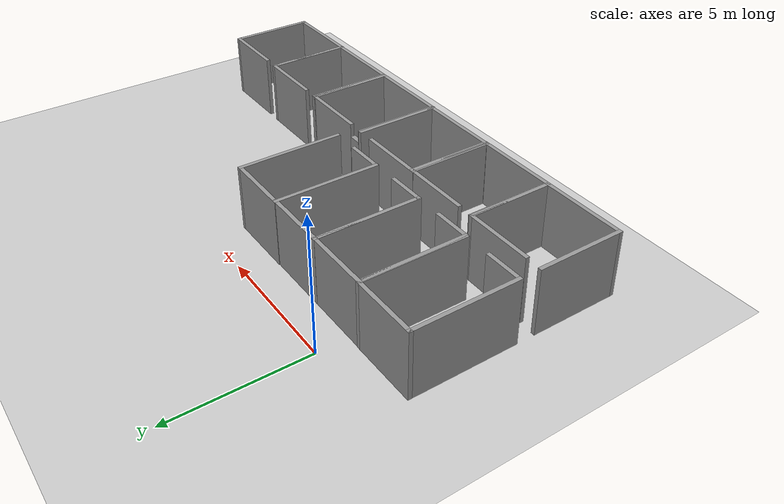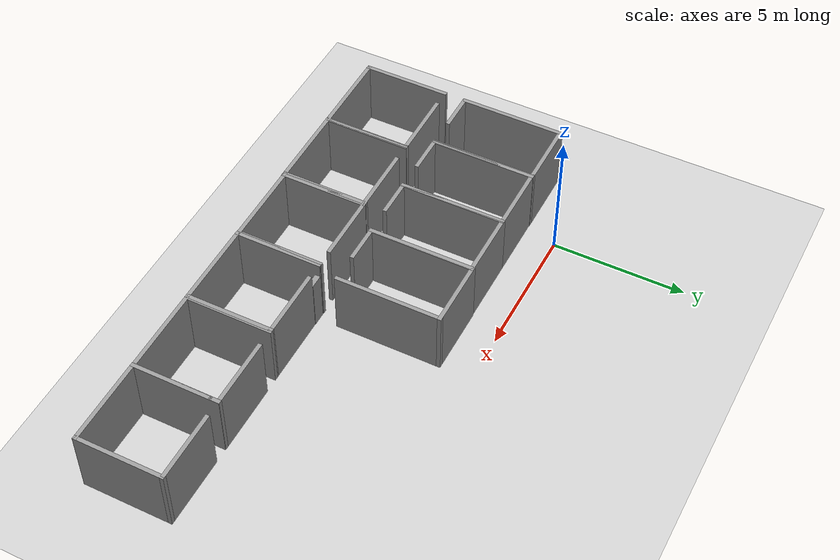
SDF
<sdf version="1.6">
 <world name="default">
  <model name="ground_plane">
   <static>1</static>
   <link name="link">
    <collision name="collision">
     <geometry><plane><normal>0 0 1</normal><size>100 100</size></plane></geometry>
     <surface>
      <contact><collide_bitmask>65535</collide_bitmask></contact>
      <friction><ode><mu>100</mu><mu2>50</mu2></ode></friction>
     </surface>
    </collision>
    <visual name="visual">
     <cast_shadows>0</cast_shadows>
     <geometry><plane><normal>0 0 1</normal><size>100 100</size></plane></geometry>
     <material>
      <script><uri>file://media/materials/scripts/gazebo.material</uri><name>Gazebo/Grey</name></script>
     </material>
    </visual>
   </link>
  </model>
  <model name="cubicle">
   <pose>-1.75869 -3.17017 0 0 -0 0</pose>
   <link name="Wall_3">
    <collision name="Wall_3_Collision">
     <geometry><box><size>4 0.15 2.5</size></box></geometry>
     <pose>0 0 1.25 0 -0 0</pose>
    </collision>
    <visual name="Wall_3_Visual">
     <pose>0 0 1.25 0 -0 0</pose>
     <geometry><box><size>4 0.15 2.5</size></box></geometry>
     <material>
      <script><uri>file://media/materials/scripts/gazebo.material</uri><name>Gazebo/Grey</name></script>
      <ambient>1 1 1 1</ambient>
     </material>
     <meta><layer>0</layer></meta>
    </visual>
    <pose>-1.225 0 0 0 -0 -1.5708</pose>
   </link>
   <link name="Wall_4">
    <collision name="Wall_4_Collision">
     <geometry><box><size>1.5 0.15 2.5</size></box></geometry>
     <pose>0 0 1.25 0 -0 0</pose>
    </collision>
    <visual name="Wall_4_Visual">
     <pose>0 0 1.25 0 -0 0</pose>
     <geometry><box><size>1.5 0.15 2.5</size></box></geometry>
     <material>
      <script><uri>file://media/materials/scripts/gazebo.material</uri><name>Gazebo/Grey</name></script>
      <ambient>1 1 1 1</ambient>
     </material>
     <meta><layer>0</layer></meta>
    </visual>
    <pose>-0.55 -1.925 0 0 -0 0</pose>
   </link>
   <link name="Wall_6">
    <collision name="Wall_6_Collision">
     <geometry><box><size>4 0.15 2.5</size></box></geometry>
     <pose>0 0 1.25 0 -0 0</pose>
    </collision>
    <visual name="Wall_6_Visual">
     <pose>0 0 1.25 0 -0 0</pose>
     <geometry><box><size>4 0.15 2.5</size></box></geometry>
     <material>
      <script><uri>file://media/materials/scripts/gazebo.material</uri><name>Gazebo/Grey</name></script>
      <ambient>1 1 1 1</ambient>
     </material>
     <meta><layer>0</layer></meta>
    </visual>
    <pose>1.225 0 0 0 -0 1.5708</pose>
   </link>
   <link name="Wall_7">
    <collision name="Wall_7_Collision">
     <geometry><box><size>2.6 0.15 2.5</size></box></geometry>
     <pose>0 0 1.25 0 -0 0</pose>
    </collision>
    <visual name="Wall_7_Visual">
     <pose>0 0 1.25 0 -0 0</pose>
     <geometry><box><size>2.6 0.15 2.5</size></box></geometry>
     <material>
      <script><uri>file://media/materials/scripts/gazebo.material</uri><name>Gazebo/Grey</name></script>
      <ambient>1 1 1 1</ambient>
     </material>
     <meta><layer>0</layer></meta>
    </visual>
    <pose>-0 1.925 0 0 -0 3.14159</pose>
   </link>
   <static>1</static>
  </model>
  <model name="cubicle_0">
   <pose>0.7221 -3.18525 0 0 -0 0</pose>
   <link name="Wall_3">
    <collision name="Wall_3_Collision">
     <geometry><box><size>4 0.15 2.5</size></box></geometry>
     <pose>0 0 1.25 0 -0 0</pose>
    </collision>
    <visual name="Wall_3_Visual">
     <pose>0 0 1.25 0 -0 0</pose>
     <geometry><box><size>4 0.15 2.5</size></box></geometry>
     <material>
      <script><uri>file://media/materials/scripts/gazebo.material</uri><name>Gazebo/Grey</name></script>
      <ambient>1 1 1 1</ambient>
     </material>
     <meta><layer>0</layer></meta>
    </visual>
    <pose>-1.225 0 0 0 -0 -1.5708</pose>
   </link>
   <link name="Wall_4">
    <collision name="Wall_4_Collision">
     <geometry><box><size>1.5 0.15 2.5</size></box></geometry>
     <pose>0 0 1.25 0 -0 0</pose>
    </collision>
    <visual name="Wall_4_Visual">
     <pose>0 0 1.25 0 -0 0</pose>
     <geometry><box><size>1.5 0.15 2.5</size></box></geometry>
     <material>
      <script><uri>file://media/materials/scripts/gazebo.material</uri><name>Gazebo/Grey</name></script>
      <ambient>1 1 1 1</ambient>
     </material>
     <meta><layer>0</layer></meta>
    </visual>
    <pose>-0.55 -1.925 0 0 -0 0</pose>
   </link>
   <link name="Wall_6">
    <collision name="Wall_6_Collision">
     <geometry><box><size>4 0.15 2.5</size></box></geometry>
     <pose>0 0 1.25 0 -0 0</pose>
    </collision>
    <visual name="Wall_6_Visual">
     <pose>0 0 1.25 0 -0 0</pose>
     <geometry><box><size>4 0.15 2.5</size></box></geometry>
     <material>
      <script><uri>file://media/materials/scripts/gazebo.material</uri><name>Gazebo/Grey</name></script>
      <ambient>1 1 1 1</ambient>
     </material>
     <meta><layer>0</layer></meta>
    </visual>
    <pose>1.225 0 0 0 -0 1.5708</pose>
   </link>
   <link name="Wall_7">
    <collision name="Wall_7_Collision">
     <geometry><box><size>2.6 0.15 2.5</size></box></geometry>
     <pose>0 0 1.25 0 -0 0</pose>
    </collision>
    <visual name="Wall_7_Visual">
     <pose>0 0 1.25 0 -0 0</pose>
     <geometry><box><size>2.6 0.15 2.5</size></box></geometry>
     <material>
      <script><uri>file://media/materials/scripts/gazebo.material</uri><name>Gazebo/Grey</name></script>
      <ambient>1 1 1 1</ambient>
     </material>
     <meta><layer>0</layer></meta>
    </visual>
    <pose>-0 1.925 0 0 -0 3.14159</pose>
   </link>
   <static>1</static>
  </model>
  <model name="cubicle_1">
   <pose>3.16716 -3.18304 0 0 -0 0</pose>
   <link name="Wall_3">
    <collision name="Wall_3_Collision">
     <geometry><box><size>4 0.15 2.5</size></box></geometry>
     <pose>0 0 1.25 0 -0 0</pose>
    </collision>
    <visual name="Wall_3_Visual">
     <pose>0 0 1.25 0 -0 0</pose>
     <geometry><box><size>4 0.15 2.5</size></box></geometry>
     <material>
      <script><uri>file://media/materials/scripts/gazebo.material</uri><name>Gazebo/Grey</name></script>
      <ambient>1 1 1 1</ambient>
     </material>
     <meta><layer>0</layer></meta>
    </visual>
    <pose>-1.225 0 0 0 -0 -1.5708</pose>
   </link>
   <link name="Wall_4">
    <collision name="Wall_4_Collision">
     <geometry><box><size>1.5 0.15 2.5</size></box></geometry>
     <pose>0 0 1.25 0 -0 0</pose>
    </collision>
    <visual name="Wall_4_Visual">
     <pose>0 0 1.25 0 -0 0</pose>
     <geometry><box><size>1.5 0.15 2.5</size></box></geometry>
     <material>
      <script><uri>file://media/materials/scripts/gazebo.material</uri><name>Gazebo/Grey</name></script>
      <ambient>1 1 1 1</ambient>
     </material>
     <meta><layer>0</layer></meta>
    </visual>
    <pose>-0.55 -1.925 0 0 -0 0</pose>
   </link>
   <link name="Wall_6">
    <collision name="Wall_6_Collision">
     <geometry><box><size>4 0.15 2.5</size></box></geometry>
     <pose>0 0 1.25 0 -0 0</pose>
    </collision>
    <visual name="Wall_6_Visual">
     <pose>0 0 1.25 0 -0 0</pose>
     <geometry><box><size>4 0.15 2.5</size></box></geometry>
     <material>
      <script><uri>file://media/materials/scripts/gazebo.material</uri><name>Gazebo/Grey</name></script>
      <ambient>1 1 1 1</ambient>
     </material>
     <meta><layer>0</layer></meta>
    </visual>
    <pose>1.225 0 0 0 -0 1.5708</pose>
   </link>
   <link name="Wall_7">
    <collision name="Wall_7_Collision">
     <geometry><box><size>2.6 0.15 2.5</size></box></geometry>
     <pose>0 0 1.25 0 -0 0</pose>
    </collision>
    <visual name="Wall_7_Visual">
     <pose>0 0 1.25 0 -0 0</pose>
     <geometry><box><size>2.6 0.15 2.5</size></box></geometry>
     <material>
      <script><uri>file://media/materials/scripts/gazebo.material</uri><name>Gazebo/Grey</name></script>
      <ambient>1 1 1 1</ambient>
     </material>
     <meta><layer>0</layer></meta>
    </visual>
    <pose>-0 1.925 0 0 -0 3.14159</pose>
   </link>
   <static>1</static>
  </model>
  <model name="cubicle_2">
   <pose>5.59423 -3.16333 0 0 -0 0</pose>
   <link name="Wall_3">
    <collision name="Wall_3_Collision">
     <geometry><box><size>4 0.15 2.5</size></box></geometry>
     <pose>0 0 1.25 0 -0 0</pose>
    </collision>
    <visual name="Wall_3_Visual">
     <pose>0 0 1.25 0 -0 0</pose>
     <geometry><box><size>4 0.15 2.5</size></box></geometry>
     <material>
      <script><uri>file://media/materials/scripts/gazebo.material</uri><name>Gazebo/Grey</name></script>
      <ambient>1 1 1 1</ambient>
     </material>
     <meta><layer>0</layer></meta>
    </visual>
    <pose>-1.225 0 0 0 -0 -1.5708</pose>
   </link>
   <link name="Wall_4">
    <collision name="Wall_4_Collision">
     <geometry><box><size>1.5 0.15 2.5</size></box></geometry>
     <pose>0 0 1.25 0 -0 0</pose>
    </collision>
    <visual name="Wall_4_Visual">
     <pose>0 0 1.25 0 -0 0</pose>
     <geometry><box><size>1.5 0.15 2.5</size></box></geometry>
     <material>
      <script><uri>file://media/materials/scripts/gazebo.material</uri><name>Gazebo/Grey</name></script>
      <ambient>1 1 1 1</ambient>
     </material>
     <meta><layer>0</layer></meta>
    </visual>
    <pose>-0.55 -1.925 0 0 -0 0</pose>
   </link>
   <link name="Wall_6">
    <collision name="Wall_6_Collision">
     <geometry><box><size>4 0.15 2.5</size></box></geometry>
     <pose>0 0 1.25 0 -0 0</pose>
    </collision>
    <visual name="Wall_6_Visual">
     <pose>0 0 1.25 0 -0 0</pose>
     <geometry><box><size>4 0.15 2.5</size></box></geometry>
     <material>
      <script><uri>file://media/materials/scripts/gazebo.material</uri><name>Gazebo/Grey</name></script>
      <ambient>1 1 1 1</ambient>
     </material>
     <meta><layer>0</layer></meta>
    </visual>
    <pose>1.225 0 0 0 -0 1.5708</pose>
   </link>
   <link name="Wall_7">
    <collision name="Wall_7_Collision">
     <geometry><box><size>2.6 0.15 2.5</size></box></geometry>
     <pose>0 0 1.25 0 -0 0</pose>
    </collision>
    <visual name="Wall_7_Visual">
     <pose>0 0 1.25 0 -0 0</pose>
     <geometry><box><size>2.6 0.15 2.5</size></box></geometry>
     <material>
      <script><uri>file://media/materials/scripts/gazebo.material</uri><name>Gazebo/Grey</name></script>
      <ambient>1 1 1 1</ambient>
     </material>
     <meta><layer>0</layer></meta>
    </visual>
    <pose>-0 1.925 0 0 -0 3.14159</pose>
   </link>
   <static>1</static>
  </model>
  <model name="102Office_3">
   <pose>8.17012 -7.51834 0 0 -0 0</pose>
   <link name="Door_0">
    <collision name="Door_0_Collision">
     <geometry><box><size>0.517842 0.2 2</size></box></geometry>
     <pose>0 0 1 0 -0 0</pose>
    </collision>
    <visual name="Door_0_Visual">
     <pose>0 0 1 0 -0 0</pose>
     <geometry><box><size>0.517842 0.2 2</size></box></geometry>
     <material>
      <script><uri>file://media/materials/scripts/gazebo.material</uri><name>Gazebo/Grey</name></script>
     </material>
    </visual>
    <pose>-1.26918 1.57689 0 0 -0 0</pose>
   </link>
   <link name="Wall_13">
    <collision name="Wall_13_Collision">
     <geometry><box><size>3.334 0.15 2.5</size></box></geometry>
     <pose>0 0 1.25 0 -0 0</pose>
    </collision>
    <visual name="Wall_13_Visual">
     <pose>0 0 1.25 0 -0 0</pose>
     <geometry><box><size>3.334 0.15 2.5</size></box></geometry>
     <material>
      <script><uri>file://media/materials/scripts/gazebo.material</uri><name>Gazebo/Grey</name></script>
      <ambient>1 1 1 1</ambient>
     </material>
     <meta><layer>0</layer></meta>
    </visual>
    <pose>-0 -1.592 0 0 -0 0</pose>
   </link>
   <link name="Wall_15">
    <collision name="Wall_15_Collision">
     <geometry><box><size>3.334 0.15 2.5</size></box></geometry>
     <pose>0 0 1.25 0 -0 0</pose>
    </collision>
    <visual name="Wall_15_Visual">
     <pose>0 0 1.25 0 -0 0</pose>
     <geometry><box><size>3.334 0.15 2.5</size></box></geometry>
     <material>
      <script><uri>file://media/materials/scripts/gazebo.material</uri><name>Gazebo/Grey</name></script>
      <ambient>1 1 1 1</ambient>
     </material>
     <meta><layer>0</layer></meta>
    </visual>
    <pose>-1.592 0 0 0 -0 1.5708</pose>
   </link>
   <link name="Wall_17">
    <collision name="Wall_17_Collision">
     <geometry><box><size>3.334 0.15 2.5</size></box></geometry>
     <pose>0 0 1.25 0 -0 0</pose>
    </collision>
    <visual name="Wall_17_Visual">
     <pose>0 0 1.25 0 -0 0</pose>
     <geometry><box><size>3.334 0.15 2.5</size></box></geometry>
     <material>
      <script><uri>file://media/materials/scripts/gazebo.material</uri><name>Gazebo/Grey</name></script>
      <ambient>1 1 1 1</ambient>
     </material>
     <meta><layer>0</layer></meta>
    </visual>
    <pose>1.592 0 0 0 -0 1.5708</pose>
   </link>
   <link name="Wall_19">
    <collision name="Wall_19_Collision">
     <geometry><box><size>2.667 0.15 2.5</size></box></geometry>
     <pose>0 0 1.25 0 -0 0</pose>
    </collision>
    <visual name="Wall_19_Visual">
     <pose>0 0 1.25 0 -0 0</pose>
     <geometry><box><size>2.667 0.15 2.5</size></box></geometry>
     <material>
      <script><uri>file://media/materials/scripts/gazebo.material</uri><name>Gazebo/Grey</name></script>
      <ambient>1 1 1 1</ambient>
     </material>
     <meta><layer>0</layer></meta>
    </visual>
    <pose>0.3335 1.592 0 0 -0 3.14159</pose>
   </link>
   <static>1</static>
  </model>
  <model name="102Office_0">
   <link name="Wall_13">
    <pose>0 -1.592 0 0 -0 0</pose>
    <visual name="Wall_13_Visual">
     <pose>0 0 1.25 0 -0 0</pose>
     <geometry><box><size>3.334 0.15 2.5</size></box></geometry>
     <material>
      <script><uri>file://media/materials/scripts/gazebo.material</uri><name>Gazebo/Grey</name></script>
      <ambient>1 1 1 1</ambient>
      <shader type="pixel"/>
     </material>
     <meta><layer>0</layer></meta>
    </visual>
    <collision name="Wall_13_Collision">
     <pose>0 0 1.25 0 -0 0</pose>
     <geometry><box><size>3.334 0.15 2.5</size></box></geometry>
     <surface>
      <friction>
       <ode><mu>1</mu><mu2>1</mu2><fdir1>0 0 0</fdir1><slip1>0</slip1><slip2>0</slip2></ode>
       <torsional>
        <coefficient>1</coefficient>
        <patch_radius>0</patch_radius>
        <surface_radius>0</surface_radius>
        <use_patch_radius>1</use_patch_radius>
        <ode><slip>0</slip></ode>
       </torsional>
      </friction>
      <bounce><restitution_coefficient>0</restitution_coefficient><threshold>1e+06</threshold></bounce>
      <contact>
       <collide_without_contact>0</collide_without_contact>
       <collide_without_contact_bitmask>1</collide_without_contact_bitmask>
       <collide_bitmask>1</collide_bitmask>
       <ode>
        <soft_cfm>0</soft_cfm>
        <soft_erp>0.2</soft_erp>
        <kp>1e+13</kp>
        <kd>1</kd>
        <max_vel>0.01</max_vel>
        <min_depth>0</min_depth>
       </ode>
       <bullet>
        <split_impulse>1</split_impulse>
        <split_impulse_penetration_threshold>-0.01</split_impulse_penetration_threshold>
        <soft_cfm>0</soft_cfm>
        <soft_erp>0.2</soft_erp>
        <kp>1e+13</kp>
        <kd>1</kd>
       </bullet>
      </contact>
     </surface>
    </collision>
   </link>
   <link name="Wall_15">
    <pose>-1.592 0 0 0 -0 1.5708</pose>
    <visual name="Wall_15_Visual">
     <pose>0 0 1.25 0 -0 0</pose>
     <geometry><box><size>3.334 0.15 2.5</size></box></geometry>
     <material>
      <script><uri>file://media/materials/scripts/gazebo.material</uri><name>Gazebo/Grey</name></script>
      <ambient>1 1 1 1</ambient>
      <shader type="pixel"/>
     </material>
     <meta><layer>0</layer></meta>
    </visual>
    <collision name="Wall_15_Collision">
     <pose>0 0 1.25 0 -0 0</pose>
     <geometry><box><size>3.334 0.15 2.5</size></box></geometry>
     <surface>
      <friction>
       <ode><mu>1</mu><mu2>1</mu2><fdir1>0 0 0</fdir1><slip1>0</slip1><slip2>0</slip2></ode>
       <torsional>
        <coefficient>1</coefficient>
        <patch_radius>0</patch_radius>
        <surface_radius>0</surface_radius>
        <use_patch_radius>1</use_patch_radius>
        <ode><slip>0</slip></ode>
       </torsional>
      </friction>
      <bounce><restitution_coefficient>0</restitution_coefficient><threshold>1e+06</threshold></bounce>
      <contact>
       <collide_without_contact>0</collide_without_contact>
       <collide_without_contact_bitmask>1</collide_without_contact_bitmask>
       <collide_bitmask>1</collide_bitmask>
       <ode>
        <soft_cfm>0</soft_cfm>
        <soft_erp>0.2</soft_erp>
        <kp>1e+13</kp>
        <kd>1</kd>
        <max_vel>0.01</max_vel>
        <min_depth>0</min_depth>
       </ode>
       <bullet>
        <split_impulse>1</split_impulse>
        <split_impulse_penetration_threshold>-0.01</split_impulse_penetration_threshold>
        <soft_cfm>0</soft_cfm>
        <soft_erp>0.2</soft_erp>
        <kp>1e+13</kp>
        <kd>1</kd>
       </bullet>
      </contact>
     </surface>
    </collision>
   </link>
   <link name="Wall_17">
    <pose>1.592 0 0 0 -0 1.5708</pose>
    <visual name="Wall_17_Visual">
     <pose>0 0 1.25 0 -0 0</pose>
     <geometry><box><size>3.334 0.15 2.5</size></box></geometry>
     <material>
      <script><uri>file://media/materials/scripts/gazebo.material</uri><name>Gazebo/Grey</name></script>
      <ambient>1 1 1 1</ambient>
      <shader type="pixel"/>
     </material>
     <meta><layer>0</layer></meta>
    </visual>
    <collision name="Wall_17_Collision">
     <pose>0 0 1.25 0 -0 0</pose>
     <geometry><box><size>3.334 0.15 2.5</size></box></geometry>
     <surface>
      <friction>
       <ode><mu>1</mu><mu2>1</mu2><fdir1>0 0 0</fdir1><slip1>0</slip1><slip2>0</slip2></ode>
       <torsional>
        <coefficient>1</coefficient>
        <patch_radius>0</patch_radius>
        <surface_radius>0</surface_radius>
        <use_patch_radius>1</use_patch_radius>
        <ode><slip>0</slip></ode>
       </torsional>
      </friction>
      <bounce><restitution_coefficient>0</restitution_coefficient><threshold>1e+06</threshold></bounce>
      <contact>
       <collide_without_contact>0</collide_without_contact>
       <collide_without_contact_bitmask>1</collide_without_contact_bitmask>
       <collide_bitmask>1</collide_bitmask>
       <ode>
        <soft_cfm>0</soft_cfm>
        <soft_erp>0.2</soft_erp>
        <kp>1e+13</kp>
        <kd>1</kd>
        <max_vel>0.01</max_vel>
        <min_depth>0</min_depth>
       </ode>
       <bullet>
        <split_impulse>1</split_impulse>
        <split_impulse_penetration_threshold>-0.01</split_impulse_penetration_threshold>
        <soft_cfm>0</soft_cfm>
        <soft_erp>0.2</soft_erp>
        <kp>1e+13</kp>
        <kd>1</kd>
       </bullet>
      </contact>
     </surface>
    </collision>
   </link>
   <link name="Wall_19">
    <pose>0.3335 1.592 0 0 -0 3.14159</pose>
    <visual name="Wall_19_Visual">
     <pose>0 0 1.25 0 -0 0</pose>
     <geometry><box><size>2.667 0.15 2.5</size></box></geometry>
     <material>
      <script><uri>file://media/materials/scripts/gazebo.material</uri><name>Gazebo/Grey</name></script>
      <ambient>1 1 1 1</ambient>
      <shader type="pixel"/>
     </material>
     <meta><layer>0</layer></meta>
    </visual>
    <collision name="Wall_19_Collision">
     <pose>0 0 1.25 0 -0 0</pose>
     <geometry><box><size>2.667 0.15 2.5</size></box></geometry>
     <surface>
      <friction>
       <ode><mu>1</mu><mu2>1</mu2><fdir1>0 0 0</fdir1><slip1>0</slip1><slip2>0</slip2></ode>
       <torsional>
        <coefficient>1</coefficient>
        <patch_radius>0</patch_radius>
        <surface_radius>0</surface_radius>
        <use_patch_radius>1</use_patch_radius>
        <ode><slip>0</slip></ode>
       </torsional>
      </friction>
      <bounce><restitution_coefficient>0</restitution_coefficient><threshold>1e+06</threshold></bounce>
      <contact>
       <collide_without_contact>0</collide_without_contact>
       <collide_without_contact_bitmask>1</collide_without_contact_bitmask>
       <collide_bitmask>1</collide_bitmask>
       <ode>
        <soft_cfm>0</soft_cfm>
        <soft_erp>0.2</soft_erp>
        <kp>1e+13</kp>
        <kd>1</kd>
        <max_vel>0.01</max_vel>
        <min_depth>0</min_depth>
       </ode>
       <bullet>
        <split_impulse>1</split_impulse>
        <split_impulse_penetration_threshold>-0.01</split_impulse_penetration_threshold>
        <soft_cfm>0</soft_cfm>
        <soft_erp>0.2</soft_erp>
        <kp>1e+13</kp>
        <kd>1</kd>
       </bullet>
      </contact>
     </surface>
    </collision>
   </link>
   <static>1</static>
   <pose>-1.39414 -7.51028 0 0 -0 0</pose>
  </model>
  <model name="102Office_1">
   <link name="Wall_13">
    <pose>0 -1.592 0 0 -0 0</pose>
    <visual name="Wall_13_Visual">
     <pose>0 0 1.25 0 -0 0</pose>
     <geometry><box><size>3.334 0.15 2.5</size></box></geometry>
     <material>
      <script><uri>file://media/materials/scripts/gazebo.material</uri><name>Gazebo/Grey</name></script>
      <ambient>1 1 1 1</ambient>
      <shader type="pixel"/>
     </material>
     <meta><layer>0</layer></meta>
    </visual>
    <collision name="Wall_13_Collision">
     <pose>0 0 1.25 0 -0 0</pose>
     <geometry><box><size>3.334 0.15 2.5</size></box></geometry>
     <surface>
      <friction>
       <ode><mu>1</mu><mu2>1</mu2><fdir1>0 0 0</fdir1><slip1>0</slip1><slip2>0</slip2></ode>
       <torsional>
        <coefficient>1</coefficient>
        <patch_radius>0</patch_radius>
        <surface_radius>0</surface_radius>
        <use_patch_radius>1</use_patch_radius>
        <ode><slip>0</slip></ode>
       </torsional>
      </friction>
      <bounce><restitution_coefficient>0</restitution_coefficient><threshold>1e+06</threshold></bounce>
      <contact>
       <collide_without_contact>0</collide_without_contact>
       <collide_without_contact_bitmask>1</collide_without_contact_bitmask>
       <collide_bitmask>1</collide_bitmask>
       <ode>
        <soft_cfm>0</soft_cfm>
        <soft_erp>0.2</soft_erp>
        <kp>1e+13</kp>
        <kd>1</kd>
        <max_vel>0.01</max_vel>
        <min_depth>0</min_depth>
       </ode>
       <bullet>
        <split_impulse>1</split_impulse>
        <split_impulse_penetration_threshold>-0.01</split_impulse_penetration_threshold>
        <soft_cfm>0</soft_cfm>
        <soft_erp>0.2</soft_erp>
        <kp>1e+13</kp>
        <kd>1</kd>
       </bullet>
      </contact>
     </surface>
    </collision>
   </link>
   <link name="Wall_15">
    <pose>-1.592 0 0 0 -0 1.5708</pose>
    <visual name="Wall_15_Visual">
     <pose>0 0 1.25 0 -0 0</pose>
     <geometry><box><size>3.334 0.15 2.5</size></box></geometry>
     <material>
      <script><uri>file://media/materials/scripts/gazebo.material</uri><name>Gazebo/Grey</name></script>
      <ambient>1 1 1 1</ambient>
      <shader type="pixel"/>
     </material>
     <meta><layer>0</layer></meta>
    </visual>
    <collision name="Wall_15_Collision">
     <pose>0 0 1.25 0 -0 0</pose>
     <geometry><box><size>3.334 0.15 2.5</size></box></geometry>
     <surface>
      <friction>
       <ode><mu>1</mu><mu2>1</mu2><fdir1>0 0 0</fdir1><slip1>0</slip1><slip2>0</slip2></ode>
       <torsional>
        <coefficient>1</coefficient>
        <patch_radius>0</patch_radius>
        <surface_radius>0</surface_radius>
        <use_patch_radius>1</use_patch_radius>
        <ode><slip>0</slip></ode>
       </torsional>
      </friction>
      <bounce><restitution_coefficient>0</restitution_coefficient><threshold>1e+06</threshold></bounce>
      <contact>
       <collide_without_contact>0</collide_without_contact>
       <collide_without_contact_bitmask>1</collide_without_contact_bitmask>
       <collide_bitmask>1</collide_bitmask>
       <ode>
        <soft_cfm>0</soft_cfm>
        <soft_erp>0.2</soft_erp>
        <kp>1e+13</kp>
        <kd>1</kd>
        <max_vel>0.01</max_vel>
        <min_depth>0</min_depth>
       </ode>
       <bullet>
        <split_impulse>1</split_impulse>
        <split_impulse_penetration_threshold>-0.01</split_impulse_penetration_threshold>
        <soft_cfm>0</soft_cfm>
        <soft_erp>0.2</soft_erp>
        <kp>1e+13</kp>
        <kd>1</kd>
       </bullet>
      </contact>
     </surface>
    </collision>
   </link>
   <link name="Wall_17">
    <pose>1.592 0 0 0 -0 1.5708</pose>
    <visual name="Wall_17_Visual">
     <pose>0 0 1.25 0 -0 0</pose>
     <geometry><box><size>3.334 0.15 2.5</size></box></geometry>
     <material>
      <script><uri>file://media/materials/scripts/gazebo.material</uri><name>Gazebo/Grey</name></script>
      <ambient>1 1 1 1</ambient>
      <shader type="pixel"/>
     </material>
     <meta><layer>0</layer></meta>
    </visual>
    <collision name="Wall_17_Collision">
     <pose>0 0 1.25 0 -0 0</pose>
     <geometry><box><size>3.334 0.15 2.5</size></box></geometry>
     <surface>
      <friction>
       <ode><mu>1</mu><mu2>1</mu2><fdir1>0 0 0</fdir1><slip1>0</slip1><slip2>0</slip2></ode>
       <torsional>
        <coefficient>1</coefficient>
        <patch_radius>0</patch_radius>
        <surface_radius>0</surface_radius>
        <use_patch_radius>1</use_patch_radius>
        <ode><slip>0</slip></ode>
       </torsional>
      </friction>
      <bounce><restitution_coefficient>0</restitution_coefficient><threshold>1e+06</threshold></bounce>
      <contact>
       <collide_without_contact>0</collide_without_contact>
       <collide_without_contact_bitmask>1</collide_without_contact_bitmask>
       <collide_bitmask>1</collide_bitmask>
       <ode>
        <soft_cfm>0</soft_cfm>
        <soft_erp>0.2</soft_erp>
        <kp>1e+13</kp>
        <kd>1</kd>
        <max_vel>0.01</max_vel>
        <min_depth>0</min_depth>
       </ode>
       <bullet>
        <split_impulse>1</split_impulse>
        <split_impulse_penetration_threshold>-0.01</split_impulse_penetration_threshold>
        <soft_cfm>0</soft_cfm>
        <soft_erp>0.2</soft_erp>
        <kp>1e+13</kp>
        <kd>1</kd>
       </bullet>
      </contact>
     </surface>
    </collision>
   </link>
   <link name="Wall_19">
    <pose>0.3335 1.592 0 0 -0 3.14159</pose>
    <visual name="Wall_19_Visual">
     <pose>0 0 1.25 0 -0 0</pose>
     <geometry><box><size>2.667 0.15 2.5</size></box></geometry>
     <material>
      <script><uri>file://media/materials/scripts/gazebo.material</uri><name>Gazebo/Grey</name></script>
      <ambient>1 1 1 1</ambient>
      <shader type="pixel"/>
     </material>
     <meta><layer>0</layer></meta>
    </visual>
    <collision name="Wall_19_Collision">
     <pose>0 0 1.25 0 -0 0</pose>
     <geometry><box><size>2.667 0.15 2.5</size></box></geometry>
     <surface>
      <friction>
       <ode><mu>1</mu><mu2>1</mu2><fdir1>0 0 0</fdir1><slip1>0</slip1><slip2>0</slip2></ode>
       <torsional>
        <coefficient>1</coefficient>
        <patch_radius>0</patch_radius>
        <surface_radius>0</surface_radius>
        <use_patch_radius>1</use_patch_radius>
        <ode><slip>0</slip></ode>
       </torsional>
      </friction>
      <bounce><restitution_coefficient>0</restitution_coefficient><threshold>1e+06</threshold></bounce>
      <contact>
       <collide_without_contact>0</collide_without_contact>
       <collide_without_contact_bitmask>1</collide_without_contact_bitmask>
       <collide_bitmask>1</collide_bitmask>
       <ode>
        <soft_cfm>0</soft_cfm>
        <soft_erp>0.2</soft_erp>
        <kp>1e+13</kp>
        <kd>1</kd>
        <max_vel>0.01</max_vel>
        <min_depth>0</min_depth>
       </ode>
       <bullet>
        <split_impulse>1</split_impulse>
        <split_impulse_penetration_threshold>-0.01</split_impulse_penetration_threshold>
        <soft_cfm>0</soft_cfm>
        <soft_erp>0.2</soft_erp>
        <kp>1e+13</kp>
        <kd>1</kd>
       </bullet>
      </contact>
     </surface>
    </collision>
   </link>
   <static>1</static>
   <pose>1.82128 -7.51458 0 0 -0 0</pose>
  </model>
  <model name="102OfficeRev_0">
   <link name="Wall_21">
    <pose>-3e-06 -1.5921 0 0 -0 0</pose>
    <visual name="Wall_21_Visual">
     <pose>0 0 1.25 0 -0 0</pose>
     <geometry><box><size>3.334 0.15 2.5</size></box></geometry>
     <material>
      <script><uri>file://media/materials/scripts/gazebo.material</uri><name>Gazebo/Grey</name></script>
      <ambient>1 1 1 1</ambient>
      <shader type="pixel"/>
     </material>
     <meta><layer>0</layer></meta>
    </visual>
    <collision name="Wall_21_Collision">
     <pose>0 0 1.25 0 -0 0</pose>
     <geometry><box><size>3.334 0.15 2.5</size></box></geometry>
     <surface>
      <friction>
       <ode><mu>1</mu><mu2>1</mu2><fdir1>0 0 0</fdir1><slip1>0</slip1><slip2>0</slip2></ode>
       <torsional>
        <coefficient>1</coefficient>
        <patch_radius>0</patch_radius>
        <surface_radius>0</surface_radius>
        <use_patch_radius>1</use_patch_radius>
        <ode><slip>0</slip></ode>
       </torsional>
      </friction>
      <bounce><restitution_coefficient>0</restitution_coefficient><threshold>1e+06</threshold></bounce>
      <contact>
       <collide_without_contact>0</collide_without_contact>
       <collide_without_contact_bitmask>1</collide_without_contact_bitmask>
       <collide_bitmask>1</collide_bitmask>
       <ode>
        <soft_cfm>0</soft_cfm>
        <soft_erp>0.2</soft_erp>
        <kp>1e+13</kp>
        <kd>1</kd>
        <max_vel>0.01</max_vel>
        <min_depth>0</min_depth>
       </ode>
       <bullet>
        <split_impulse>1</split_impulse>
        <split_impulse_penetration_threshold>-0.01</split_impulse_penetration_threshold>
        <soft_cfm>0</soft_cfm>
        <soft_erp>0.2</soft_erp>
        <kp>1e+13</kp>
        <kd>1</kd>
       </bullet>
      </contact>
     </surface>
    </collision>
   </link>
   <link name="Wall_23">
    <pose>1.59186 9.4e-05 0 0 -0 1.57088</pose>
    <visual name="Wall_23_Visual">
     <pose>0 0 1.25 0 -0 0</pose>
     <geometry><box><size>3.334 0.15 2.5</size></box></geometry>
     <material>
      <script><uri>file://media/materials/scripts/gazebo.material</uri><name>Gazebo/Grey</name></script>
      <ambient>1 1 1 1</ambient>
      <shader type="pixel"/>
     </material>
     <meta><layer>0</layer></meta>
    </visual>
    <collision name="Wall_23_Collision">
     <pose>0 0 1.25 0 -0 0</pose>
     <geometry><box><size>3.334 0.15 2.5</size></box></geometry>
     <surface>
      <friction>
       <ode><mu>1</mu><mu2>1</mu2><fdir1>0 0 0</fdir1><slip1>0</slip1><slip2>0</slip2></ode>
       <torsional>
        <coefficient>1</coefficient>
        <patch_radius>0</patch_radius>
        <surface_radius>0</surface_radius>
        <use_patch_radius>1</use_patch_radius>
        <ode><slip>0</slip></ode>
       </torsional>
      </friction>
      <bounce><restitution_coefficient>0</restitution_coefficient><threshold>1e+06</threshold></bounce>
      <contact>
       <collide_without_contact>0</collide_without_contact>
       <collide_without_contact_bitmask>1</collide_without_contact_bitmask>
       <collide_bitmask>1</collide_bitmask>
       <ode>
        <soft_cfm>0</soft_cfm>
        <soft_erp>0.2</soft_erp>
        <kp>1e+13</kp>
        <kd>1</kd>
        <max_vel>0.01</max_vel>
        <min_depth>0</min_depth>
       </ode>
       <bullet>
        <split_impulse>1</split_impulse>
        <split_impulse_penetration_threshold>-0.01</split_impulse_penetration_threshold>
        <soft_cfm>0</soft_cfm>
        <soft_erp>0.2</soft_erp>
        <kp>1e+13</kp>
        <kd>1</kd>
       </bullet>
      </contact>
     </surface>
    </collision>
   </link>
   <link name="Wall_25">
    <pose>-1.592 -0.000101 0 0 -0 1.5708</pose>
    <visual name="Wall_25_Visual">
     <pose>0 0 1.25 0 -0 0</pose>
     <geometry><box><size>3.334 0.15 2.5</size></box></geometry>
     <material>
      <script><uri>file://media/materials/scripts/gazebo.material</uri><name>Gazebo/Grey</name></script>
      <ambient>1 1 1 1</ambient>
      <shader type="pixel"/>
     </material>
     <meta><layer>0</layer></meta>
    </visual>
    <collision name="Wall_25_Collision">
     <pose>0 0 1.25 0 -0 0</pose>
     <geometry><box><size>3.334 0.15 2.5</size></box></geometry>
     <surface>
      <friction>
       <ode><mu>1</mu><mu2>1</mu2><fdir1>0 0 0</fdir1><slip1>0</slip1><slip2>0</slip2></ode>
       <torsional>
        <coefficient>1</coefficient>
        <patch_radius>0</patch_radius>
        <surface_radius>0</surface_radius>
        <use_patch_radius>1</use_patch_radius>
        <ode><slip>0</slip></ode>
       </torsional>
      </friction>
      <bounce><restitution_coefficient>0</restitution_coefficient><threshold>1e+06</threshold></bounce>
      <contact>
       <collide_without_contact>0</collide_without_contact>
       <collide_without_contact_bitmask>1</collide_without_contact_bitmask>
       <collide_bitmask>1</collide_bitmask>
       <ode>
        <soft_cfm>0</soft_cfm>
        <soft_erp>0.2</soft_erp>
        <kp>1e+13</kp>
        <kd>1</kd>
        <max_vel>0.01</max_vel>
        <min_depth>0</min_depth>
       </ode>
       <bullet>
        <split_impulse>1</split_impulse>
        <split_impulse_penetration_threshold>-0.01</split_impulse_penetration_threshold>
        <soft_cfm>0</soft_cfm>
        <soft_erp>0.2</soft_erp>
        <kp>1e+13</kp>
        <kd>1</kd>
       </bullet>
      </contact>
     </surface>
    </collision>
   </link>
   <link name="Wall_27">
    <pose>-0.333503 1.5919 0 0 -0 0</pose>
    <visual name="Wall_27_Visual">
     <pose>0 0 1.25 0 -0 0</pose>
     <geometry><box><size>2.667 0.15 2.5</size></box></geometry>
     <material>
      <script><uri>file://media/materials/scripts/gazebo.material</uri><name>Gazebo/Grey</name></script>
      <ambient>1 1 1 1</ambient>
      <shader type="pixel"/>
     </material>
     <meta><layer>0</layer></meta>
    </visual>
    <collision name="Wall_27_Collision">
     <pose>0 0 1.25 0 -0 0</pose>
     <geometry><box><size>2.667 0.15 2.5</size></box></geometry>
     <surface>
      <friction>
       <ode><mu>1</mu><mu2>1</mu2><fdir1>0 0 0</fdir1><slip1>0</slip1><slip2>0</slip2></ode>
       <torsional>
        <coefficient>1</coefficient>
        <patch_radius>0</patch_radius>
        <surface_radius>0</surface_radius>
        <use_patch_radius>1</use_patch_radius>
        <ode><slip>0</slip></ode>
       </torsional>
      </friction>
      <bounce><restitution_coefficient>0</restitution_coefficient><threshold>1e+06</threshold></bounce>
      <contact>
       <collide_without_contact>0</collide_without_contact>
       <collide_without_contact_bitmask>1</collide_without_contact_bitmask>
       <collide_bitmask>1</collide_bitmask>
       <ode>
        <soft_cfm>0</soft_cfm>
        <soft_erp>0.2</soft_erp>
        <kp>1e+13</kp>
        <kd>1</kd>
        <max_vel>0.01</max_vel>
        <min_depth>0</min_depth>
       </ode>
       <bullet>
        <split_impulse>1</split_impulse>
        <split_impulse_penetration_threshold>-0.01</split_impulse_penetration_threshold>
        <soft_cfm>0</soft_cfm>
        <soft_erp>0.2</soft_erp>
        <kp>1e+13</kp>
        <kd>1</kd>
       </bullet>
      </contact>
     </surface>
    </collision>
   </link>
   <static>1</static>
   <pose>4.93248 -7.50045 0 0 -0 0</pose>
  </model>
  <model name="102Office_4">
   <link name="Wall_13">
    <pose>0 -1.592 0 0 -0 0</pose>
    <visual name="Wall_13_Visual">
     <pose>0 0 1.25 0 -0 0</pose>
     <geometry><box><size>3.334 0.15 2.5</size></box></geometry>
     <material>
      <script><uri>file://media/materials/scripts/gazebo.material</uri><name>Gazebo/Grey</name></script>
      <ambient>1 1 1 1</ambient>
      <shader type="pixel"/>
     </material>
     <meta><layer>0</layer></meta>
    </visual>
    <collision name="Wall_13_Collision">
     <pose>0 0 1.25 0 -0 0</pose>
     <geometry><box><size>3.334 0.15 2.5</size></box></geometry>
     <surface>
      <friction>
       <ode><mu>1</mu><mu2>1</mu2><fdir1>0 0 0</fdir1><slip1>0</slip1><slip2>0</slip2></ode>
       <torsional>
        <coefficient>1</coefficient>
        <patch_radius>0</patch_radius>
        <surface_radius>0</surface_radius>
        <use_patch_radius>1</use_patch_radius>
        <ode><slip>0</slip></ode>
       </torsional>
      </friction>
      <bounce><restitution_coefficient>0</restitution_coefficient><threshold>1e+06</threshold></bounce>
      <contact>
       <collide_without_contact>0</collide_without_contact>
       <collide_without_contact_bitmask>1</collide_without_contact_bitmask>
       <collide_bitmask>1</collide_bitmask>
       <ode>
        <soft_cfm>0</soft_cfm>
        <soft_erp>0.2</soft_erp>
        <kp>1e+13</kp>
        <kd>1</kd>
        <max_vel>0.01</max_vel>
        <min_depth>0</min_depth>
       </ode>
       <bullet>
        <split_impulse>1</split_impulse>
        <split_impulse_penetration_threshold>-0.01</split_impulse_penetration_threshold>
        <soft_cfm>0</soft_cfm>
        <soft_erp>0.2</soft_erp>
        <kp>1e+13</kp>
        <kd>1</kd>
       </bullet>
      </contact>
     </surface>
    </collision>
   </link>
   <link name="Wall_15">
    <pose>-1.592 0 0 0 -0 1.5708</pose>
    <visual name="Wall_15_Visual">
     <pose>0 0 1.25 0 -0 0</pose>
     <geometry><box><size>3.334 0.15 2.5</size></box></geometry>
     <material>
      <script><uri>file://media/materials/scripts/gazebo.material</uri><name>Gazebo/Grey</name></script>
      <ambient>1 1 1 1</ambient>
      <shader type="pixel"/>
     </material>
     <meta><layer>0</layer></meta>
    </visual>
    <collision name="Wall_15_Collision">
     <pose>0 0 1.25 0 -0 0</pose>
     <geometry><box><size>3.334 0.15 2.5</size></box></geometry>
     <surface>
      <friction>
       <ode><mu>1</mu><mu2>1</mu2><fdir1>0 0 0</fdir1><slip1>0</slip1><slip2>0</slip2></ode>
       <torsional>
        <coefficient>1</coefficient>
        <patch_radius>0</patch_radius>
        <surface_radius>0</surface_radius>
        <use_patch_radius>1</use_patch_radius>
        <ode><slip>0</slip></ode>
       </torsional>
      </friction>
      <bounce><restitution_coefficient>0</restitution_coefficient><threshold>1e+06</threshold></bounce>
      <contact>
       <collide_without_contact>0</collide_without_contact>
       <collide_without_contact_bitmask>1</collide_without_contact_bitmask>
       <collide_bitmask>1</collide_bitmask>
       <ode>
        <soft_cfm>0</soft_cfm>
        <soft_erp>0.2</soft_erp>
        <kp>1e+13</kp>
        <kd>1</kd>
        <max_vel>0.01</max_vel>
        <min_depth>0</min_depth>
       </ode>
       <bullet>
        <split_impulse>1</split_impulse>
        <split_impulse_penetration_threshold>-0.01</split_impulse_penetration_threshold>
        <soft_cfm>0</soft_cfm>
        <soft_erp>0.2</soft_erp>
        <kp>1e+13</kp>
        <kd>1</kd>
       </bullet>
      </contact>
     </surface>
    </collision>
   </link>
   <link name="Wall_17">
    <pose>1.592 0 0 0 -0 1.5708</pose>
    <visual name="Wall_17_Visual">
     <pose>0 0 1.25 0 -0 0</pose>
     <geometry><box><size>3.334 0.15 2.5</size></box></geometry>
     <material>
      <script><uri>file://media/materials/scripts/gazebo.material</uri><name>Gazebo/Grey</name></script>
      <ambient>1 1 1 1</ambient>
      <shader type="pixel"/>
     </material>
     <meta><layer>0</layer></meta>
    </visual>
    <collision name="Wall_17_Collision">
     <pose>0 0 1.25 0 -0 0</pose>
     <geometry><box><size>3.334 0.15 2.5</size></box></geometry>
     <surface>
      <friction>
       <ode><mu>1</mu><mu2>1</mu2><fdir1>0 0 0</fdir1><slip1>0</slip1><slip2>0</slip2></ode>
       <torsional>
        <coefficient>1</coefficient>
        <patch_radius>0</patch_radius>
        <surface_radius>0</surface_radius>
        <use_patch_radius>1</use_patch_radius>
        <ode><slip>0</slip></ode>
       </torsional>
      </friction>
      <bounce><restitution_coefficient>0</restitution_coefficient><threshold>1e+06</threshold></bounce>
      <contact>
       <collide_without_contact>0</collide_without_contact>
       <collide_without_contact_bitmask>1</collide_without_contact_bitmask>
       <collide_bitmask>1</collide_bitmask>
       <ode>
        <soft_cfm>0</soft_cfm>
        <soft_erp>0.2</soft_erp>
        <kp>1e+13</kp>
        <kd>1</kd>
        <max_vel>0.01</max_vel>
        <min_depth>0</min_depth>
       </ode>
       <bullet>
        <split_impulse>1</split_impulse>
        <split_impulse_penetration_threshold>-0.01</split_impulse_penetration_threshold>
        <soft_cfm>0</soft_cfm>
        <soft_erp>0.2</soft_erp>
        <kp>1e+13</kp>
        <kd>1</kd>
       </bullet>
      </contact>
     </surface>
    </collision>
   </link>
   <link name="Wall_19">
    <pose>0.3335 1.592 0 0 -0 3.14159</pose>
    <visual name="Wall_19_Visual">
     <pose>0 0 1.25 0 -0 0</pose>
     <geometry><box><size>2.667 0.15 2.5</size></box></geometry>
     <material>
      <script><uri>file://media/materials/scripts/gazebo.material</uri><name>Gazebo/Grey</name></script>
      <ambient>1 1 1 1</ambient>
      <shader type="pixel"/>
     </material>
     <meta><layer>0</layer></meta>
    </visual>
    <collision name="Wall_19_Collision">
     <pose>0 0 1.25 0 -0 0</pose>
     <geometry><box><size>2.667 0.15 2.5</size></box></geometry>
     <surface>
      <friction>
       <ode><mu>1</mu><mu2>1</mu2><fdir1>0 0 0</fdir1><slip1>0</slip1><slip2>0</slip2></ode>
       <torsional>
        <coefficient>1</coefficient>
        <patch_radius>0</patch_radius>
        <surface_radius>0</surface_radius>
        <use_patch_radius>1</use_patch_radius>
        <ode><slip>0</slip></ode>
       </torsional>
      </friction>
      <bounce><restitution_coefficient>0</restitution_coefficient><threshold>1e+06</threshold></bounce>
      <contact>
       <collide_without_contact>0</collide_without_contact>
       <collide_without_contact_bitmask>1</collide_without_contact_bitmask>
       <collide_bitmask>1</collide_bitmask>
       <ode>
        <soft_cfm>0</soft_cfm>
        <soft_erp>0.2</soft_erp>
        <kp>1e+13</kp>
        <kd>1</kd>
        <max_vel>0.01</max_vel>
        <min_depth>0</min_depth>
       </ode>
       <bullet>
        <split_impulse>1</split_impulse>
        <split_impulse_penetration_threshold>-0.01</split_impulse_penetration_threshold>
        <soft_cfm>0</soft_cfm>
        <soft_erp>0.2</soft_erp>
        <kp>1e+13</kp>
        <kd>1</kd>
       </bullet>
      </contact>
     </surface>
    </collision>
   </link>
   <static>1</static>
   <pose>11.4171 -7.51673 0 0 -0 0</pose>
  </model>
  <model name="102Office_5">
   <link name="Wall_13">
    <pose>0 -1.592 0 0 -0 0</pose>
    <visual name="Wall_13_Visual">
     <pose>0 0 1.25 0 -0 0</pose>
     <geometry><box><size>3.334 0.15 2.5</size></box></geometry>
     <material>
      <script><uri>file://media/materials/scripts/gazebo.material</uri><name>Gazebo/Grey</name></script>
      <ambient>1 1 1 1</ambient>
      <shader type="pixel"/>
     </material>
     <meta><layer>0</layer></meta>
    </visual>
    <collision name="Wall_13_Collision">
     <pose>0 0 1.25 0 -0 0</pose>
     <geometry><box><size>3.334 0.15 2.5</size></box></geometry>
     <surface>
      <friction>
       <ode><mu>1</mu><mu2>1</mu2><fdir1>0 0 0</fdir1><slip1>0</slip1><slip2>0</slip2></ode>
       <torsional>
        <coefficient>1</coefficient>
        <patch_radius>0</patch_radius>
        <surface_radius>0</surface_radius>
        <use_patch_radius>1</use_patch_radius>
        <ode><slip>0</slip></ode>
       </torsional>
      </friction>
      <bounce><restitution_coefficient>0</restitution_coefficient><threshold>1e+06</threshold></bounce>
      <contact>
       <collide_without_contact>0</collide_without_contact>
       <collide_without_contact_bitmask>1</collide_without_contact_bitmask>
       <collide_bitmask>1</collide_bitmask>
       <ode>
        <soft_cfm>0</soft_cfm>
        <soft_erp>0.2</soft_erp>
        <kp>1e+13</kp>
        <kd>1</kd>
        <max_vel>0.01</max_vel>
        <min_depth>0</min_depth>
       </ode>
       <bullet>
        <split_impulse>1</split_impulse>
        <split_impulse_penetration_threshold>-0.01</split_impulse_penetration_threshold>
        <soft_cfm>0</soft_cfm>
        <soft_erp>0.2</soft_erp>
        <kp>1e+13</kp>
        <kd>1</kd>
       </bullet>
      </contact>
     </surface>
    </collision>
   </link>
   <link name="Wall_15">
    <pose>-1.592 0 0 0 -0 1.5708</pose>
    <visual name="Wall_15_Visual">
     <pose>0 0 1.25 0 -0 0</pose>
     <geometry><box><size>3.334 0.15 2.5</size></box></geometry>
     <material>
      <script><uri>file://media/materials/scripts/gazebo.material</uri><name>Gazebo/Grey</name></script>
      <ambient>1 1 1 1</ambient>
      <shader type="pixel"/>
     </material>
     <meta><layer>0</layer></meta>
    </visual>
    <collision name="Wall_15_Collision">
     <pose>0 0 1.25 0 -0 0</pose>
     <geometry><box><size>3.334 0.15 2.5</size></box></geometry>
     <surface>
      <friction>
       <ode><mu>1</mu><mu2>1</mu2><fdir1>0 0 0</fdir1><slip1>0</slip1><slip2>0</slip2></ode>
       <torsional>
        <coefficient>1</coefficient>
        <patch_radius>0</patch_radius>
        <surface_radius>0</surface_radius>
        <use_patch_radius>1</use_patch_radius>
        <ode><slip>0</slip></ode>
       </torsional>
      </friction>
      <bounce><restitution_coefficient>0</restitution_coefficient><threshold>1e+06</threshold></bounce>
      <contact>
       <collide_without_contact>0</collide_without_contact>
       <collide_without_contact_bitmask>1</collide_without_contact_bitmask>
       <collide_bitmask>1</collide_bitmask>
       <ode>
        <soft_cfm>0</soft_cfm>
        <soft_erp>0.2</soft_erp>
        <kp>1e+13</kp>
        <kd>1</kd>
        <max_vel>0.01</max_vel>
        <min_depth>0</min_depth>
       </ode>
       <bullet>
        <split_impulse>1</split_impulse>
        <split_impulse_penetration_threshold>-0.01</split_impulse_penetration_threshold>
        <soft_cfm>0</soft_cfm>
        <soft_erp>0.2</soft_erp>
        <kp>1e+13</kp>
        <kd>1</kd>
       </bullet>
      </contact>
     </surface>
    </collision>
   </link>
   <link name="Wall_17">
    <pose>1.592 0 0 0 -0 1.5708</pose>
    <visual name="Wall_17_Visual">
     <pose>0 0 1.25 0 -0 0</pose>
     <geometry><box><size>3.334 0.15 2.5</size></box></geometry>
     <material>
      <script><uri>file://media/materials/scripts/gazebo.material</uri><name>Gazebo/Grey</name></script>
      <ambient>1 1 1 1</ambient>
      <shader type="pixel"/>
     </material>
     <meta><layer>0</layer></meta>
    </visual>
    <collision name="Wall_17_Collision">
     <pose>0 0 1.25 0 -0 0</pose>
     <geometry><box><size>3.334 0.15 2.5</size></box></geometry>
     <surface>
      <friction>
       <ode><mu>1</mu><mu2>1</mu2><fdir1>0 0 0</fdir1><slip1>0</slip1><slip2>0</slip2></ode>
       <torsional>
        <coefficient>1</coefficient>
        <patch_radius>0</patch_radius>
        <surface_radius>0</surface_radius>
        <use_patch_radius>1</use_patch_radius>
        <ode><slip>0</slip></ode>
       </torsional>
      </friction>
      <bounce><restitution_coefficient>0</restitution_coefficient><threshold>1e+06</threshold></bounce>
      <contact>
       <collide_without_contact>0</collide_without_contact>
       <collide_without_contact_bitmask>1</collide_without_contact_bitmask>
       <collide_bitmask>1</collide_bitmask>
       <ode>
        <soft_cfm>0</soft_cfm>
        <soft_erp>0.2</soft_erp>
        <kp>1e+13</kp>
        <kd>1</kd>
        <max_vel>0.01</max_vel>
        <min_depth>0</min_depth>
       </ode>
       <bullet>
        <split_impulse>1</split_impulse>
        <split_impulse_penetration_threshold>-0.01</split_impulse_penetration_threshold>
        <soft_cfm>0</soft_cfm>
        <soft_erp>0.2</soft_erp>
        <kp>1e+13</kp>
        <kd>1</kd>
       </bullet>
      </contact>
     </surface>
    </collision>
   </link>
   <link name="Wall_19">
    <pose>0.3335 1.592 0 0 -0 3.14159</pose>
    <visual name="Wall_19_Visual">
     <pose>0 0 1.25 0 -0 0</pose>
     <geometry><box><size>2.667 0.15 2.5</size></box></geometry>
     <material>
      <script><uri>file://media/materials/scripts/gazebo.material</uri><name>Gazebo/Grey</name></script>
      <ambient>1 1 1 1</ambient>
      <shader type="pixel"/>
     </material>
     <meta><layer>0</layer></meta>
    </visual>
    <collision name="Wall_19_Collision">
     <pose>0 0 1.25 0 -0 0</pose>
     <geometry><box><size>2.667 0.15 2.5</size></box></geometry>
     <surface>
      <friction>
       <ode><mu>1</mu><mu2>1</mu2><fdir1>0 0 0</fdir1><slip1>0</slip1><slip2>0</slip2></ode>
       <torsional>
        <coefficient>1</coefficient>
        <patch_radius>0</patch_radius>
        <surface_radius>0</surface_radius>
        <use_patch_radius>1</use_patch_radius>
        <ode><slip>0</slip></ode>
       </torsional>
      </friction>
      <bounce><restitution_coefficient>0</restitution_coefficient><threshold>1e+06</threshold></bounce>
      <contact>
       <collide_without_contact>0</collide_without_contact>
       <collide_without_contact_bitmask>1</collide_without_contact_bitmask>
       <collide_bitmask>1</collide_bitmask>
       <ode>
        <soft_cfm>0</soft_cfm>
        <soft_erp>0.2</soft_erp>
        <kp>1e+13</kp>
        <kd>1</kd>
        <max_vel>0.01</max_vel>
        <min_depth>0</min_depth>
       </ode>
       <bullet>
        <split_impulse>1</split_impulse>
        <split_impulse_penetration_threshold>-0.01</split_impulse_penetration_threshold>
        <soft_cfm>0</soft_cfm>
        <soft_erp>0.2</soft_erp>
        <kp>1e+13</kp>
        <kd>1</kd>
       </bullet>
      </contact>
     </surface>
    </collision>
   </link>
   <static>1</static>
   <pose>14.6064 -7.52743 0 0 -0 0</pose>
  </model>
 </world>
</sdf>
